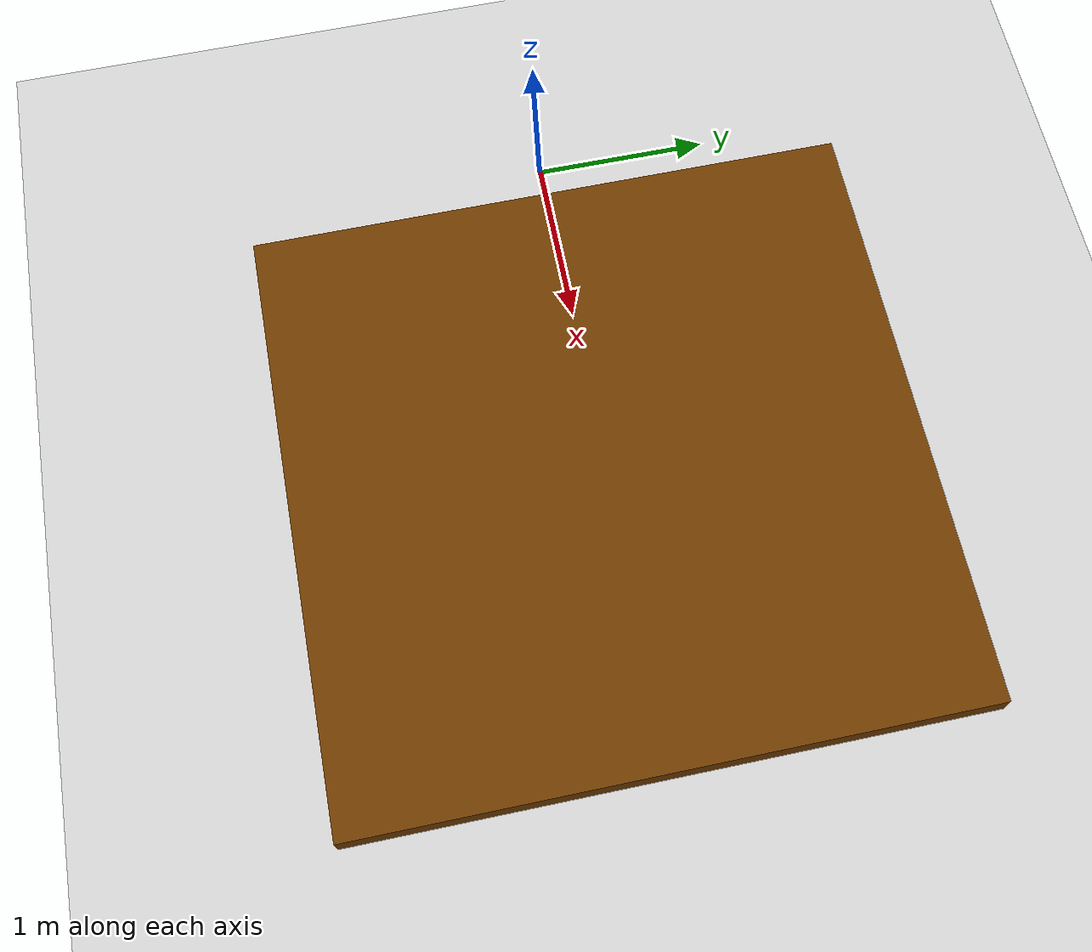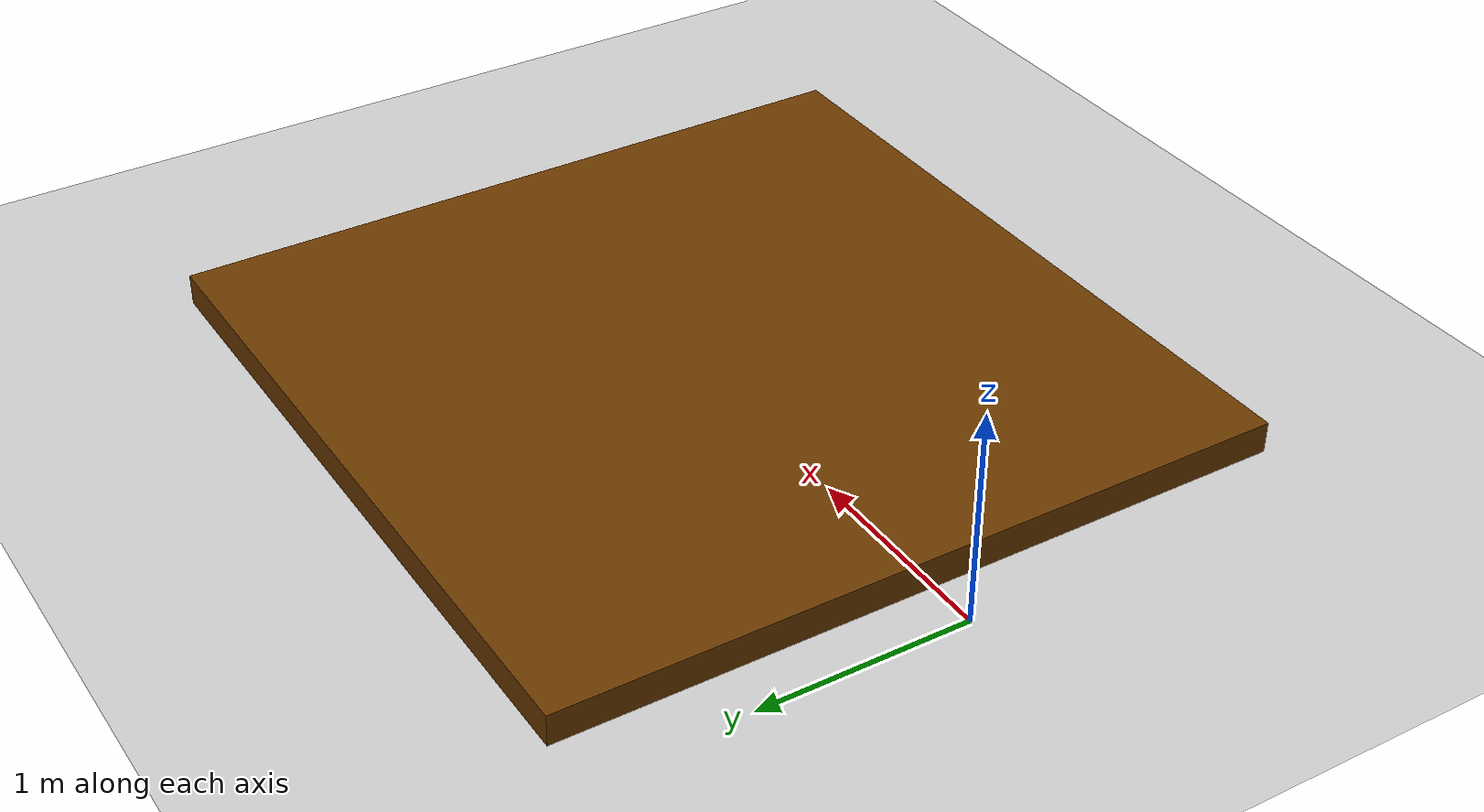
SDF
<?xml version="1.0" ?>
<sdf version="1.5">
    <world name="default">

        <physics type="ode">
        <max_step_size>0.0001</max_step_size>
        <real_time_factor>1.0</real_time_factor>
        <real_time_update_rate>10000</real_time_update_rate>
        <gravity>0 0 -9.81</gravity>
            <ode>
                <solver>
                <type>quick</type>
                <iters>80</iters>
                <sor>1.3</sor>
                </solver>
                <constraints>
                <cfm>0.0</cfm>
                <erp>0.2</erp>
                <contact_max_correcting_vel>0.1</contact_max_correcting_vel>
                <contact_surface_layer>0.0001</contact_surface_layer>
                </constraints>
            </ode>
        </physics>

        <scene>
        <sky>
            <clouds>
                <speed>12</speed>
            </clouds>
        </sky>
        </scene>
        <!-- A global light source -->
        <include>
            <uri>model://sun</uri>
        </include>
        <!-- A ground plane -->
        <include>
            <uri>model://ground_plane</uri>
        </include>
        <!-- environment blocks, obstacles or stairs -->
        <model name="static_environment">
        <static>true</static>

            <link name="floor">
                <pose>2 0 0.045 0 0 0</pose>
                <collision name="floor_collision">
                    <geometry>
                        <box>
                            <size>3.5 3.5 0.2</size>
                        </box>
                    </geometry>
                </collision>
                <visual name="floor_visual">
                    <geometry>
                        <box>
                            <size>3.5 3.5 0.2</size>
                        </box>
                    </geometry>
                    <material>
                        <ambient>0.2 0.2 0.2 1.0</ambient>
                        <diffuse>.421 0.225 0.0 1.0</diffuse>
                    </material>
                </visual>
            </link>

        </model>

    </world>
</sdf>
